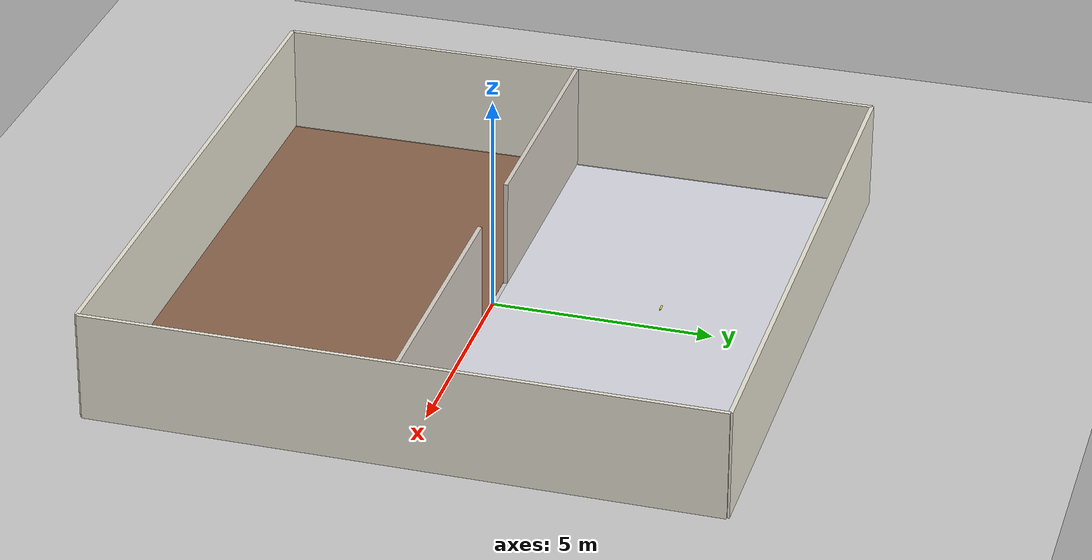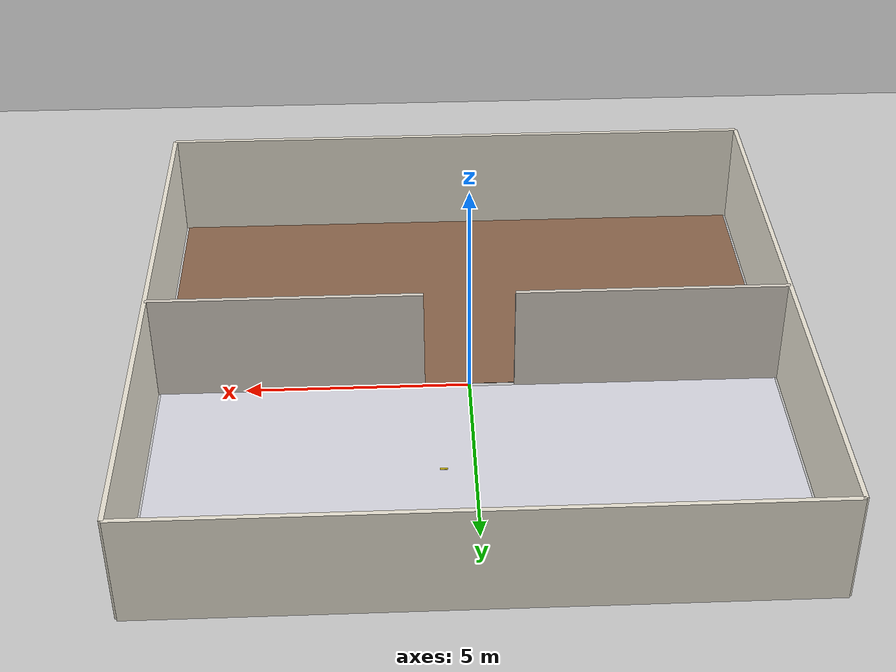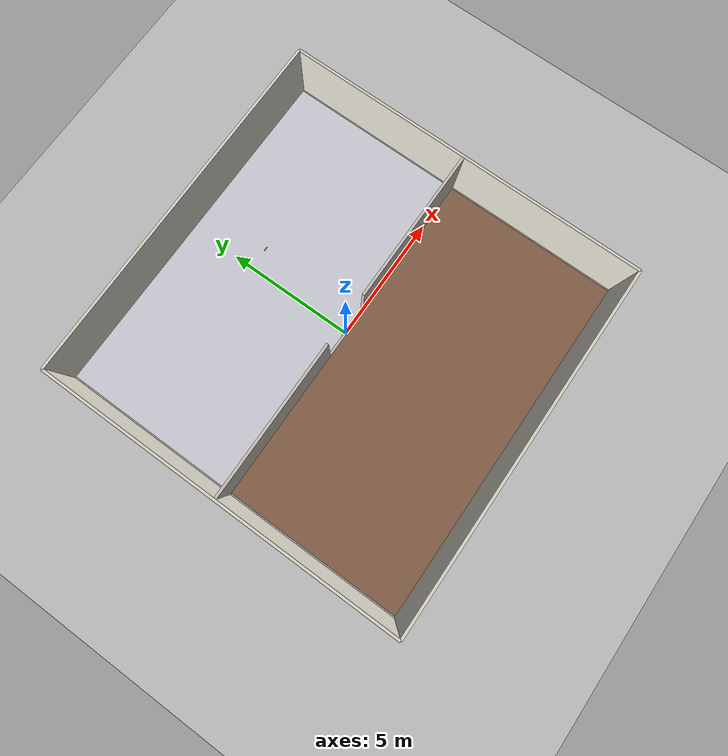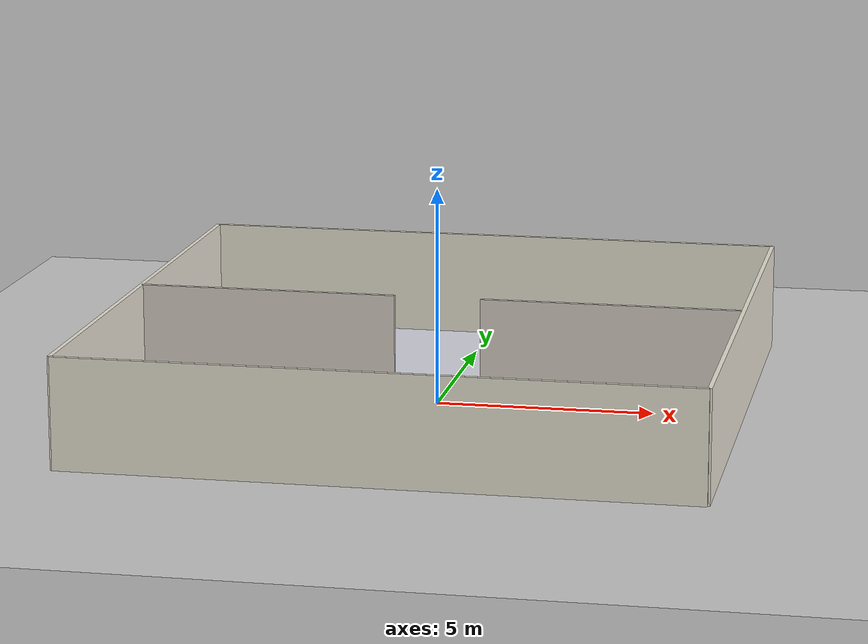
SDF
<?xml version="1.0" ?>
<sdf version="1.7">
  <world name="home">
    <physics name="default" type="ode">
      <max_step_size>0.004</max_step_size>
      <real_time_factor>1.0</real_time_factor>
      <real_time_update_rate>250</real_time_update_rate>
    </physics>

    <plugin name="gazebo_ros_state" filename="libgazebo_ros_state.so">
      <ros><namespace>/gazebo</namespace></ros>
      <update_rate>10.0</update_rate>
    </plugin>

    <include><uri>model://sun</uri></include>
    <include><uri>model://ground_plane</uri></include>

    <!-- Soft fill light so the home is not gloomy -->
    <light name="ceiling_light" type="point">
      <pose>0 0 2.6 0 0 0</pose>
      <diffuse>0.9 0.9 0.85 1</diffuse>
      <specular>0.1 0.1 0.1 1</specular>
      <attenuation>
        <range>30</range>
        <linear>0.05</linear>
        <constant>0.5</constant>
        <quadratic>0.01</quadratic>
      </attenuation>
      <cast_shadows>false</cast_shadows>
    </light>

    <model name="home_walls">
      <static>true</static>
      <pose>0 0 0 0 0 0</pose>
      <link name="walls">
        <!-- north wall -->
        <collision name="n_col"><pose>0 7 1.25 0 0 0</pose><geometry><box><size>14 0.1 2.5</size></box></geometry></collision>
        <visual name="n_vis"><pose>0 7 1.25 0 0 0</pose><geometry><box><size>14 0.1 2.5</size></box></geometry><material><ambient>0.92 0.90 0.84 1</ambient><diffuse>0.92 0.90 0.84 1</diffuse></material></visual>
        <!-- south wall -->
        <collision name="s_col"><pose>0 -7 1.25 0 0 0</pose><geometry><box><size>14 0.1 2.5</size></box></geometry></collision>
        <visual name="s_vis"><pose>0 -7 1.25 0 0 0</pose><geometry><box><size>14 0.1 2.5</size></box></geometry><material><ambient>0.92 0.90 0.84 1</ambient><diffuse>0.92 0.90 0.84 1</diffuse></material></visual>
        <!-- west wall -->
        <collision name="w_col"><pose>-7 0 1.25 0 0 0</pose><geometry><box><size>0.1 14 2.5</size></box></geometry></collision>
        <visual name="w_vis"><pose>-7 0 1.25 0 0 0</pose><geometry><box><size>0.1 14 2.5</size></box></geometry><material><ambient>0.92 0.90 0.84 1</ambient><diffuse>0.92 0.90 0.84 1</diffuse></material></visual>
        <!-- east wall -->
        <collision name="e_col"><pose>7 0 1.25 0 0 0</pose><geometry><box><size>0.1 14 2.5</size></box></geometry></collision>
        <visual name="e_vis"><pose>7 0 1.25 0 0 0</pose><geometry><box><size>0.1 14 2.5</size></box></geometry><material><ambient>0.92 0.90 0.84 1</ambient><diffuse>0.92 0.90 0.84 1</diffuse></material></visual>

        <!-- partition — 2 m doorway (±1 m from centre) -->
        <collision name="p_w_col"><pose>-4.0 0 1.25 0 0 0</pose><geometry><box><size>6.0 0.1 2.5</size></box></geometry></collision>
        <visual name="p_w_vis"><pose>-4.0 0 1.25 0 0 0</pose><geometry><box><size>6.0 0.1 2.5</size></box></geometry><material><ambient>0.85 0.82 0.78 1</ambient><diffuse>0.85 0.82 0.78 1</diffuse></material></visual>
        <collision name="p_e_col"><pose>4.0 0 1.25 0 0 0</pose><geometry><box><size>6.0 0.1 2.5</size></box></geometry></collision>
        <visual name="p_e_vis"><pose>4.0 0 1.25 0 0 0</pose><geometry><box><size>6.0 0.1 2.5</size></box></geometry><material><ambient>0.85 0.82 0.78 1</ambient><diffuse>0.85 0.82 0.78 1</diffuse></material></visual>
      </link>
    </model>

    <!-- Floor texturing per room -->
    <model name="kitchen_floor">
      <static>true</static>
      <pose>0 3.5 0.005 0 0 0</pose>
      <link name="l">
        <visual name="v"><geometry><box><size>13.8 6.9 0.01</size></box></geometry><material><ambient>0.86 0.86 0.90 1</ambient><diffuse>0.86 0.86 0.90 1</diffuse></material></visual>
      </link>
    </model>
    <model name="living_room_floor">
      <static>true</static>
      <pose>0 -3.5 0.005 0 0 0</pose>
      <link name="l">
        <visual name="v"><geometry><box><size>13.8 6.9 0.01</size></box></geometry><material><ambient>0.55 0.40 0.30 1</ambient><diffuse>0.55 0.40 0.30 1</diffuse></material></visual>
      </link>
    </model>

    <!-- Invisible laser-opaque collision boxes for furniture the laser may
         partially miss. Positions match SCENE_LAYOUT in simulation.launch.py. -->
    <model name="couch_blocker">
      <static>true</static>
      <pose>-1.5 -6.0 0.3 0 0 0</pose>
      <link name="l">
        <collision name="c"><geometry><box><size>2.2 1.0 0.7</size></box></geometry></collision>
      </link>
    </model>
    <model name="armchair_blocker">
      <static>true</static>
      <pose>3.0 -5.5 0.3 0 0 0</pose>
      <link name="l">
        <collision name="c"><geometry><box><size>1.0 1.0 0.7</size></box></geometry></collision>
      </link>
    </model>
    <model name="tv_table_blocker">
      <static>true</static>
      <pose>5.5 -3.5 0.4 0 0 0</pose>
      <link name="l">
        <collision name="c"><geometry><box><size>0.6 1.5 0.9</size></box></geometry></collision>
      </link>
    </model>
    <model name="dining_table_blocker">
      <static>true</static>
      <pose>-4.0 -2.5 0.3 0 0 0</pose>
      <link name="l">
        <collision name="c"><geometry><box><size>1.6 0.9 0.7</size></box></geometry></collision>
      </link>
    </model>
    <model name="kitchen_counter_blocker">
      <static>true</static>
      <pose>-1.5 2.5 0.4 0 0 0</pose>
      <link name="l">
        <collision name="c"><geometry><box><size>5.5 0.7 0.9</size></box></geometry></collision>
      </link>
    </model>

    <!-- Banana on the kitchen island. Placed where the robot can see it. -->
    <model name="banana">
      <static>false</static>
      <pose>0.7 4.0 0.95 0 1.5708 0</pose>
      <link name="link">
        <inertial>
          <mass>0.12</mass>
          <inertia><ixx>1e-4</ixx><iyy>1e-4</iyy><izz>1e-4</izz><ixy>0</ixy><ixz>0</ixz><iyz>0</iyz></inertia>
        </inertial>
        <collision name="c"><geometry><cylinder><radius>0.018</radius><length>0.16</length></cylinder></geometry></collision>
        <visual name="v">
          <geometry><cylinder><radius>0.018</radius><length>0.16</length></cylinder></geometry>
          <material><ambient>0.95 0.85 0.1 1</ambient><diffuse>0.95 0.85 0.1 1</diffuse></material>
        </visual>
      </link>
    </model>
  </world>
</sdf>
